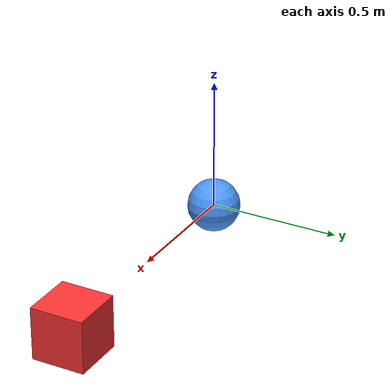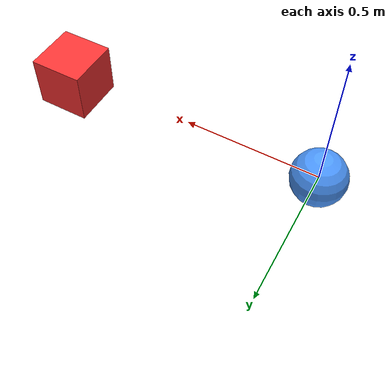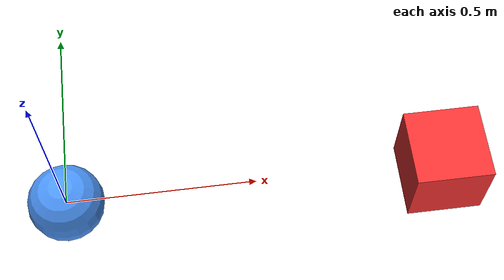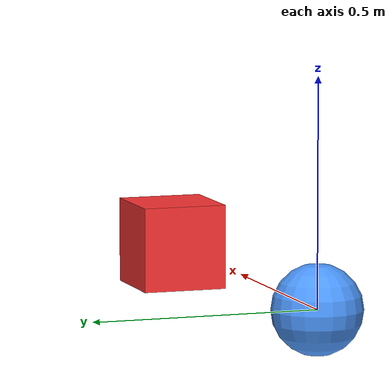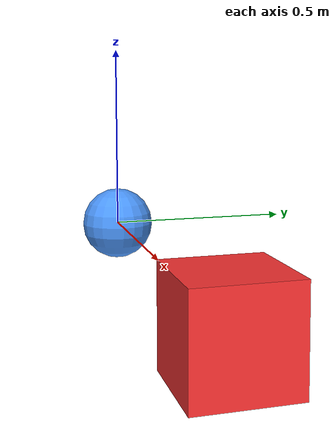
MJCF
<mujoco model="camera_modes_demo">
  <worldbody>

    <!-- Camera định hướng bằng xyaxes -->
    <camera name="cam_xyaxes" pos="0 0 2" xyaxes="1 0 0 0 1 0"/>

    <body name="center" pos="0 0 0">
      <geom type="sphere" size="0.1" rgba="0.3 0.6 1 1"/>
    </body>

    <body name="moving" pos="1 0 0">

      <!-- Camera bám theo COM của body moving -->
      <camera name="cam_trackcom" mode="trackcom" pos="0 0 1" />

      <joint name="slide_x" type="slide" axis="1 0 0"/>
      <geom type="box" size="0.1 0.1 0.1" rgba="1 0.2 0.2 1"/>
      <!-- gắn camera vào body này để dùng với targetbody -->

      <!-- Camera luôn nhìn vào body "moving" -->
      <camera name="cam_target" mode="targetbody" target="moving" pos="1 0 2" />
    </body>

    <!-- Camera cố định trong world body -->
    <camera name="cam_fixed" pos="0 0 1" mode="fixed" />
  </worldbody>

  <actuator>
    <motor joint="slide_x" ctrlrange="-1 1" ctrllimited="true"/>
  </actuator>

  <option gravity="0 0 -9.81"/>
</mujoco>
